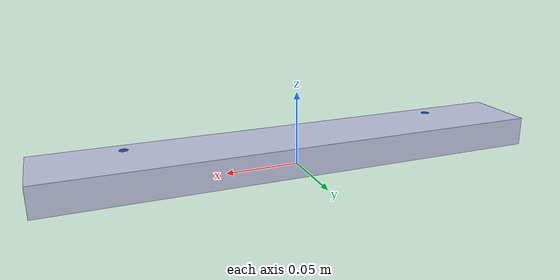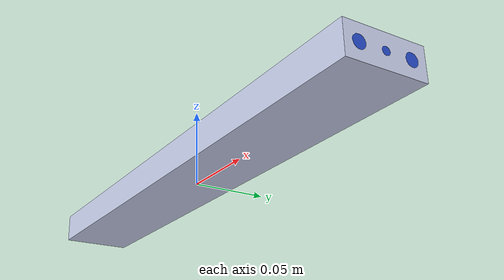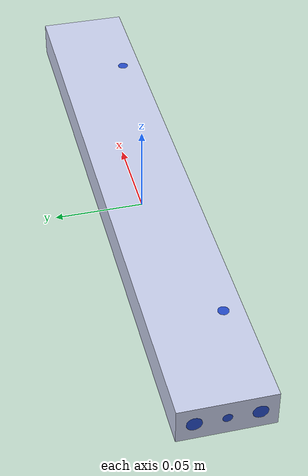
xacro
<?xml version="1.0"?>
<robot name="chair_part2_post" xmlns:xacro="http://www.ros.org/wiki/xacro">
	<xacro:include filename="$(find object_description)/chair_urdf/chair_part2.SLDPRT.urdf"/>
	<xacro:include filename="$(find object_description)/chair_xacro/for_assemble_macro.xacro"/>

	<xacro:property name="x_offset" value="0.0"/>
	<xacro:property name="y_offset" value="0.0"/>
	<xacro:property name="z_offset" value="0.0"/>

	<xacro:hole_definition link_name="hole_1"
						   length="0.023"
						   radius="0.004"
						   x="${0.1585 + x_offset}" y="${0.016 + y_offset}" z="${0.01 + z_offset}"
						   rx="0" ry="${pi/2}" rz="0"
						   parent="chair part2.SLDPRT"/>

	<xacro:hole_definition link_name="hole_2"
						   length="0.023"
						   radius="0.004"
						   x="${0.1585 + x_offset}" y="${-0.016 + y_offset}" z="${0.01 + z_offset}"
						   rx="0" ry="${pi/2}" rz="0"
						   parent="chair part2.SLDPRT"/>

	<xacro:hole_definition link_name="hole_3"
						   length="0.023"
						   radius="0.0025"
						   x="${0.1585 + x_offset}" y="${-0.0 + y_offset}" z="${0.01 + z_offset}"
						   rx="0" ry="${pi/2}" rz="0"
						   parent="chair part2.SLDPRT"/>

	<xacro:hole_definition link_name="hole_4"
						   length="0.023"
						   radius="0.004"
						   x="${-0.1585 + x_offset}" y="${0.016 + y_offset}" z="${0.01 + z_offset}"
						   rx="0" ry="${pi/2}" rz="0"
						   parent="chair part2.SLDPRT"/>

	<xacro:hole_definition link_name="hole_5"
						   length="0.023"
						   radius="0.004"
						   x="${-0.1585 + x_offset}" y="${-0.016 + y_offset}" z="${0.01 + z_offset}"
						   rx="0" ry="${pi/2}" rz="0"
						   parent="chair part2.SLDPRT"/>

	<xacro:hole_definition link_name="hole_6"
						   length="0.023"
						   radius="0.0025"
						   x="${-0.1585 + x_offset}" y="${-0.0 + y_offset}" z="${0.01 + z_offset}"
						   rx="0" ry="${pi/2}" rz="0"
						   parent="chair part2.SLDPRT"/>

	<xacro:hole_definition link_name="hole_7"
						   length="0.013"
						   radius="0.003"
						   x="${0.112 + x_offset}" y="${-0.0145 + y_offset}" z="${0.0135 + z_offset}"
						   rx="0" ry="0" rz="0"
						   parent="chair part2.SLDPRT"/>

	<xacro:hole_definition link_name="hole_8"
						   length="0.013"
						   radius="0.003"
						   x="${-0.112 + x_offset}" y="${-0.0145 + y_offset}" z="${0.0135 + z_offset}"
						   rx="0" ry="0" rz="0"
						   parent="chair part2.SLDPRT"/>

</robot>

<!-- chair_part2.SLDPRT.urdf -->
<robot
  name="chair part2.SLDPRT">
  <link
    name="chair part2.SLDPRT">
    <inertial>
      <origin
        xyz="1.1264E-17 3.19400000000006E-05 0.01"
        rpy="-1.5707963267949 0 0" />
      <mass
        value="0.33374" />
      <inertia
        ixx="8.0767E-05"
        ixy="1.6657E-20"
        ixz="4.6739E-20"
        iyy="0.0031965"
        iyz="-3.73900000000036E-08"
        izz="0.0031383" />
    </inertial>
    <visual>
      <origin
        xyz="0 0 0"
        rpy="0 0 0" />
      <geometry>
        <mesh
          filename="package://object_description/chair_meshes/chair part2.SLDPRT.STL" />
      </geometry>
      <material
        name="">
        <color
          rgba="0.79216 0.81961 0.93333 1" />
        <texture
          filename="package://object_description/textures/" />
      </material>
    </visual>
    <collision>
      <origin
        xyz="0 0 0"
        rpy="0 0 0" />
      <geometry>
        <mesh
          filename="package://object_description/chair_meshes/chair part2.SLDPRT.STL" />
      </geometry>
      <surface>
      <contact>
          <ode>
            <kp>1.0E+15</kp>
            <kd>1.0E+13</kd>
          </ode>
        </contact>
      </surface>
    </collision>
  </link>
  <gazebo reference="chair part2.SLDPRT">
    <material>Gazebo/White</material>
    <kp>100000.0</kp>
    <kd>1.0</kd>
    <mu1>100000</mu1>
    <mu2>100000</mu2>
    <maxVel>0</maxVel>
    <minDepth>0.00</minDepth>
  </gazebo>
</robot>

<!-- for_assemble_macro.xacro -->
<robot xmlns:xacro="http://wiki.ros.org/xacro">

	<xacro:macro name="hole_definition" params="link_name
												length radius
												x y z rx ry rz
												parent">
		<link name="${link_name}">
			<visual>
				<origin xyz="0 0 0" rpy="0 0 0"/>
				<geometry>
					<cylinder length="${length}" radius="${radius}"/>
				</geometry>
			</visual>
		</link>

		<joint name="${link_name}_joint" type="fixed">
			<origin xyz="${x} ${y} ${z}" rpy="${rx} ${ry} ${rz}"/>
			<parent link="${parent}"/>
			<child link="${link_name}"/>
		</joint>

		<gazebo reference="${link_name}">
			<material>Gazebo/Blue</material>
		</gazebo>
	</xacro:macro>

	<xacro:macro name="shaft_definition" params="link_name
												length radius
												x y z rx ry rz
												parent">
		<link name="${link_name}">
			<visual>
				<origin xyz="0 0 0" rpy="0 0 0"/>
				<geometry>
					<cylinder length="${length}" radius="${radius}"/>
				</geometry>
			</visual>
		</link>

		<joint name="${link_name}_joint" type="fixed">
			<origin xyz="${x} ${y} ${z}" rpy="${rx} ${ry} ${rz}"/>
			<parent link="${parent}"/>
			<child link="${link_name}"/>
		</joint>

		<gazebo reference="${link_name}">
			<material>Gazebo/Red</material>
		</gazebo>
	</xacro:macro>

	<xacro:macro name="surface_definition" params="link_name
												   box_x box_y box_z
												   x y z rx ry rz
												   parent">
		<link name="${link_name}">
			<visual>
				<origin xyz="0 0 0" rpy="0 0 0"/>
				<geometry>
					<box size="${box_x} ${box_y} ${box_z}"/>
				</geometry>
			</visual>
		</link>

		<joint name="${link_name}_joint" type="fixed">
			<origin xyz="${x} ${y} ${z}" rpy="${rx} ${ry} ${rz}"/>
			<parent link="${parent}"/>
			<child link="${link_name}"/>
		</joint>

		<gazebo reference="${link_name}">
			<material>Gazebo/Green</material>
		</gazebo>
	</xacro:macro>

</robot>
